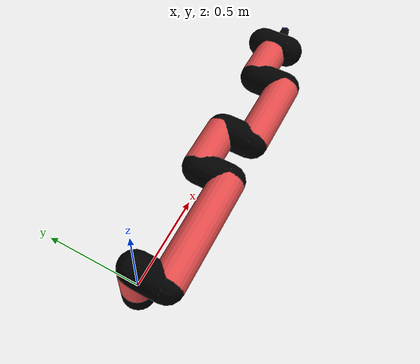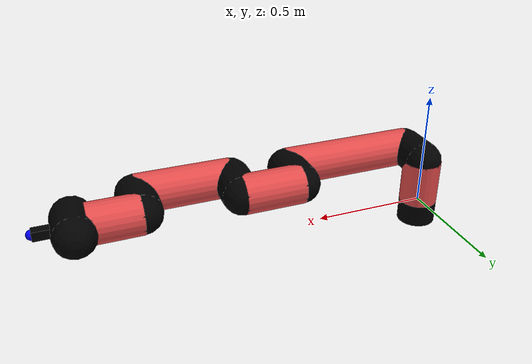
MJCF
<mujoco model="manipulator">
		<compiler angle="degree" coordinate="local" inertiafromgeom="auto" meshdir="meshes/"/>
		<option gravity="0 0 0" integrator="RK4" iterations="30" timestep="0.01"/>

		<default>
		<joint armature="1" limited="true" stiffness="10" damping="15" frictionloss="5.0"/>
		<geom conaffinity="1" condim="3" contype="1" friction=".5 .1 .1" margin="0.002"/>
		<motor ctrllimited="true"/>
		<position ctrllimited="true"/>
		</default>

		<asset>
		<texture builtin="gradient" height="100" rgb1="1.0 1.0 1.0" rgb2="1.0 1.0 1.0" type="skybox" width="100"/>
		<texture builtin="flat" height="32" name="arm_tex" rgb1="0.9 0.3 0.3" type="2d" width="32"/>
		<texture builtin="flat" height="32" name="gripper_tex" rgb1="0.0 0.0 0.0" type="cube" width="32"/>

		<material name="arm_mat" shininess="0.1" specular="0.1" texture="arm_tex"/>
		<material name="gripper_mat" shininess="1" specular="1" texture="gripper_tex"/>
		</asset>

		<worldbody>
		<light cutoff="45" diffuse=".8 .8 .8" dir="0 0.16 -1" directional="false" name="light" pos="0 -2.0 8.0" specular="0.3 0.3 0.3"/>

		<body name="base_link" pos="0 0 -0.1">
		<geom fromto="0 0 0 0 0 0.1" material="arm_mat" name="base_link" rgba="0.0 0.0 0.0 1" size="0.085" type="cylinder"/>
		</body>

		<body name="l1" pos="0 0 0">
<geom fromto="0 0 0 0 0 0.2" material="arm_mat" name="l1" rgba="0.9 0.3 0.3 1" size="0.085" type="cylinder"/>
<geom fromto="0 0 0.2 0 -0.16 0.2" material="arm_mat" name="l1_ex" rgba="0.0 0.0 0.0 1" size="0.085" type="capsule"/>
<joint axis="0 0 1" name="j1" pos="0 0 0" range="-90 90" damping="22.07" frictionloss="13.29"/>

<body name="l2" pos="0 -0.16 0.2">
<geom fromto="0 0 0 0.6 0 0" material="arm_mat" name="l2" rgba="0.9 0.3 0.3 1" size="0.085" type="cylinder"/>
<geom fromto="0.6 0 0 0.6 0.16 0" material="arm_mat" name="l2_ex" rgba="0.0 0.0 0.0 1" size="0.085" type="capsule"/>
<joint axis="0.0 1.0 0.0" name="j2" pos="0 0 0" range="-90 60" damping="32.41" frictionloss="12.73"/>

<body name="l3" pos="0.6 0.16 0">
<geom fromto="0 0 0 0.26 0 0" material="arm_mat" name="l3" rgba="0.9 0.3 0.3 1" size="0.085" type="cylinder"/>
<geom fromto="0.26 0 0 0.26 -0.16 0" material="arm_mat" name="l3_ex" rgba="0.0 0.0 0.0 1" size="0.085" type="capsule"/>
<joint axis="0.0 1.0 0.0" name="j3" pos="0 0 0" range="-30 60" damping="24.99" frictionloss="12.94"/>

<body name="l4" pos="0.26 -0.16 0">
<geom fromto="0 0 0 0.41 0 0" material="arm_mat" name="l4" rgba="0.9 0.3 0.3 1" size="0.085" type="cylinder"/>
<geom fromto="0.41 0 0 0.41 0.16 0" material="arm_mat" name="l4_ex" rgba="0.0 0.0 0.0 1" size="0.085" type="capsule"/>
<joint axis="0.0 1.0 0.0" name="j4" pos="0 0 0" range="-30 60" damping="39.29" frictionloss="7.08"/>

<body name="l5" pos="0.41 0.16 0">
<geom fromto="0 0 0 0.21 0 0" material="arm_mat" name="l5" rgba="0.9 0.3 0.3 1" size="0.085" type="cylinder"/>
<joint axis="0.0 1.0 0.0" name="j5" pos="0 0 0" range="-30 60" damping="18.94" frictionloss="6.59"/>

<body name="gripper" pos="0.21 0 0">
<geom fromto="0.05 -0.07 0 0.05 0.07 0" material="gripper_mat" name="gripper" rgba="0.0 0.0 0.0 1" size="0.085" type="capsule"/><joint axis="1 0 0" name="j6" pos="0 0 0" range="-90 90" damping="15" frictionloss="5.0"/><body name="finger" pos="0.1 0 0">
<geom fromto="0 0.0 0 0.1 0.0 0" material="gripper_mat" name="finger" rgba="0.0 0.0 0.0 1" size="0.020 0.06 0.06" type="box"/>
</body>
<site name="current" pos="0.2 0. 0.0" rgba="0. 0. 1.0 1" size="0.02" type="sphere"/>
</body>
</body>
</body>
</body>
</body>
</body>
</worldbody>
<actuator>
<motor ctrllimited="true" ctrlrange="-1.0 1.0" joint="j1" gear="61.63"/>
<motor ctrllimited="true" ctrlrange="-1.0 1.0" joint="j2" gear="71.56"/>
<motor ctrllimited="true" ctrlrange="-1.0 1.0" joint="j3" gear="86.65"/>
<motor ctrllimited="true" ctrlrange="-1.0 1.0" joint="j4" gear="83.27"/>
<motor ctrllimited="true" ctrlrange="-1.0 1.0" joint="j5" gear="103.43"/>
<motor ctrllimited="true" ctrlrange="-1.0 1.0" joint="j6" gear="80"/>
</actuator>
</mujoco>
